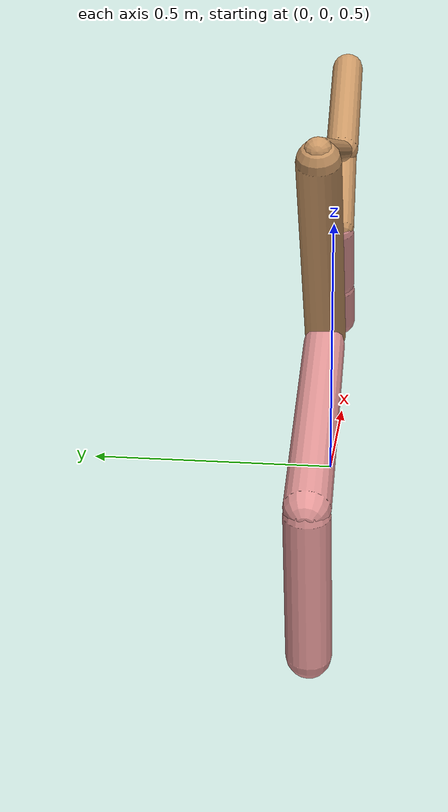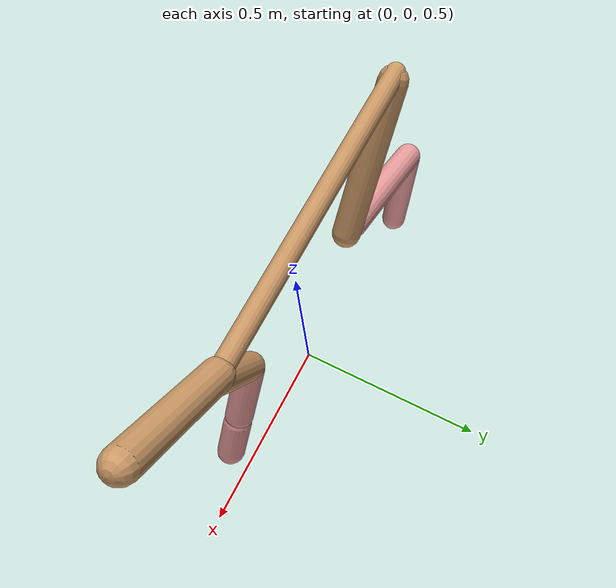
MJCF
<mujoco model="cheetah">
  <compiler angle="radian" coordinate="local" inertiafromgeom="true" settotalmass="14" />
  <default>
    <joint armature=".1" damping=".01" limited="true" solimplimit="0 .8 .03" solreflimit=".02 1" stiffness="8" />
    <geom conaffinity="0" condim="3" contype="1" friction="0.8 .1 .1" rgba="0.8 0.6 .4 1" solimp="0.0 0.8 0.01" solref="0.02 1" />
    <motor ctrllimited="true" ctrlrange="-1 1" />
  </default>
  <size nstack="300000" nuser_geom="1" />
  <option gravity="0 0 -9.81" timestep="0.01" />
  <worldbody>
    <body name="torso" pos="0.0 0.0 1.144946177360893">
      <joint armature="0" axis="1 0 0" damping="0" limited="false" name="ignorex" pos="0 0 0" stiffness="0" type="slide" />
      <joint armature="0" axis="0 0 1" damping="0" limited="false" name="ignorez" pos="0 0 0" stiffness="0" type="slide" />
      <joint armature="0" axis="0 1 0" damping="0" limited="false" name="ignorey" pos="0 0 0" stiffness="0" type="hinge" />
      <geom fromto="-0.5 0.0 0.0 0.3071625110562084 0.0 0.0" name="torso" size="0.023867187472679043" type="capsule" />
      <geom axisangle="0 1 0 .87" name="head" pos="0.4071625110562084 0.0 0.1" size="0.03574996163897797 0.15" type="capsule" />

      <body name="bthigh" pos="-.5 0 0">
        <joint axis="0 1 0" damping="6" name="bthigh" pos="0 0 0" range="-.52 1.05" stiffness="240" type="hinge" />
        <geom axisangle="0 1 0 -3.8" name="bthigh" pos="0.13333629532940805 0.0 -0.17333718392823044" size="0.03662203058909024 0.1996755895909572" type="capsule" />
        <body name="bshin" pos="0.22667259065881606 0.0 -0.3366743678564609">
          <joint axis="0 1 0" damping="4.5" name="bshin" pos="0 0 0" range="-.785 .785" stiffness="180" type="hinge" />
          <geom axisangle="0 1 0 -2.03" name="bshin" pos="-0.1905896558766594 0.0 -0.0952948279383297" rgba="0.9 0.6 0.6 1" size="0.03662203058909024 0.20656095474926608" type="capsule" />
          <body name="bfoot" pos="-0.3811793117533188 0.0 -0.1905896558766594">
            <joint axis="0 1 0" damping="3" name="bfoot" pos="0 0 0" range="-.4 .785" stiffness="120" type="hinge" />
            <geom axisangle="0 1 0 -.27" name="bfoot" pos="0.04047288443352991 0.0 -0.13086232633508002" rgba="0.9 0.6 0.6 1" size="0.03662203058909024 0.12944486497620675" type="capsule" />
            <inertial mass="10" />
          </body>
        </body>
      </body>
      <body name="fthigh" pos="0.3071625110562084 0.0 0.0">
        <joint axis="0 1 0" damping="4.5" name="fthigh" pos="0 0 0" range="-1.5 0.8" stiffness="180" type="hinge" />
        <geom axisangle="0 1 0 .52" name="fthigh" pos="-0.04989554608158897 0.0 -0.0855352218541525" size="0.0322 0.0931" type="capsule" />
        <body name="fshin" pos="-0.09979109216317794 0.0 -0.171070443708305">
          <joint axis="0 1 0" damping="3" name="fshin" pos="0 0 0" range="-1.2 1.1" stiffness="120" type="hinge" />
          <geom axisangle="0 1 0 -.6" name="fshin" pos="0.046381400387749405 0.0 -0.06422040053688378" rgba="0.9 0.6 0.6 1" size="0.0322 0.07419999999999999" type="capsule" />
          <body name="ffoot" pos="0.09276280077549881 0.0 -0.12844080107376757">
            <joint axis="0 1 0" damping="1.5" name="ffoot" pos="0 0 0" range="-3.1 -0.3" stiffness="60" type="hinge" />
            <geom axisangle="0 1 0 -.6" name="ffoot" pos="0.033644090582416526 0.0 -0.05233525201709238" rgba="0.9 0.6 0.6 1" size="0.0322 0.049" type="capsule" />
            <inertial mass="10" />
          </body>
        </body>
      </body>
    </body>
  </worldbody>
  <actuator>
    <motor gear="120" joint="bthigh" name="bthigh" />
    <motor gear="90" joint="bshin" name="bshin" />
    <motor gear="60" joint="bfoot" name="bfoot" />
    <motor gear="120" joint="fthigh" name="fthigh" />
    <motor gear="60" joint="fshin" name="fshin" />
    <motor gear="30" joint="ffoot" name="ffoot" />
  </actuator>
</mujoco>
